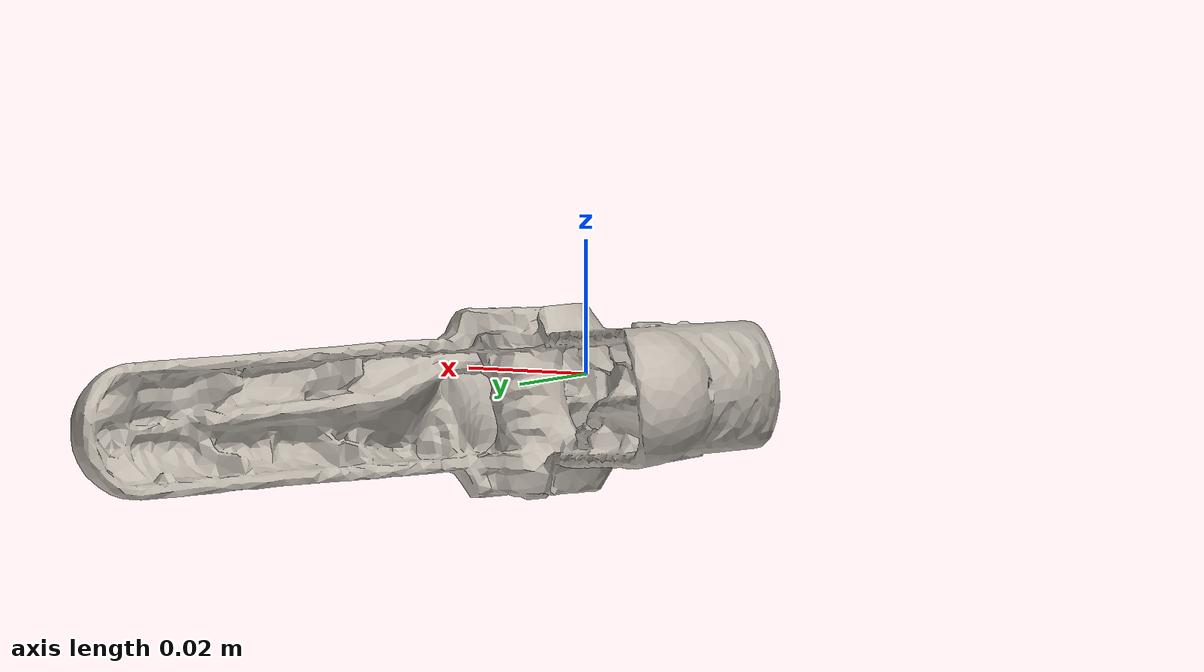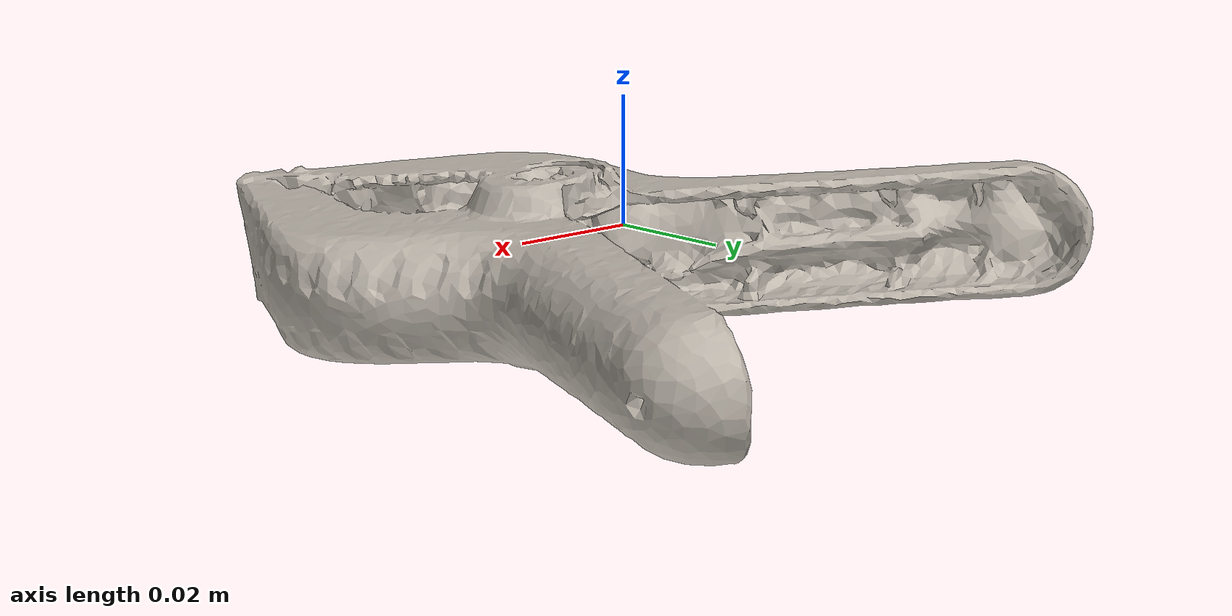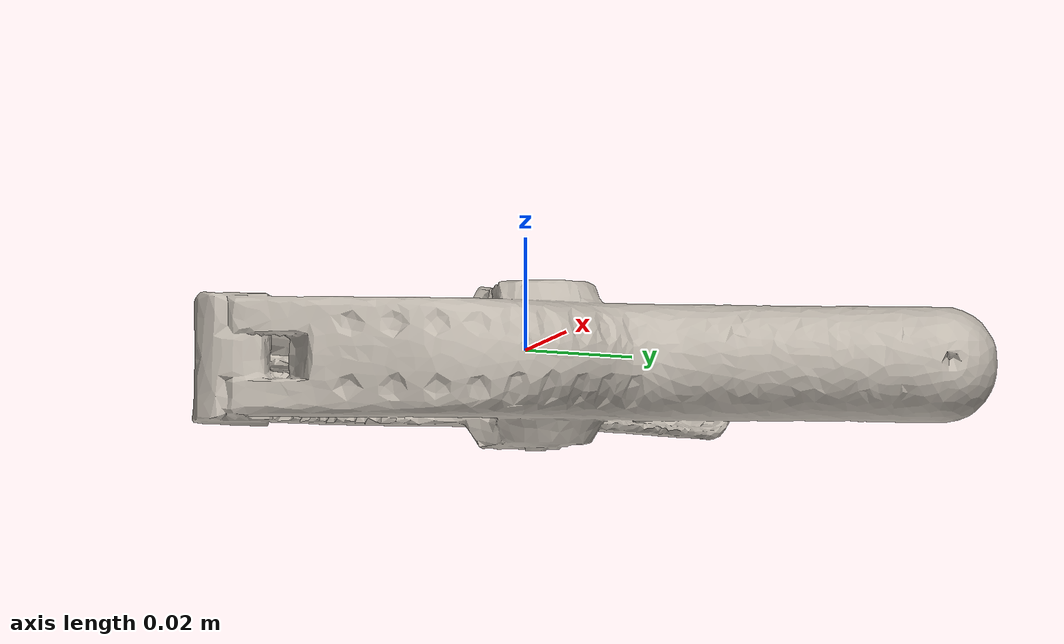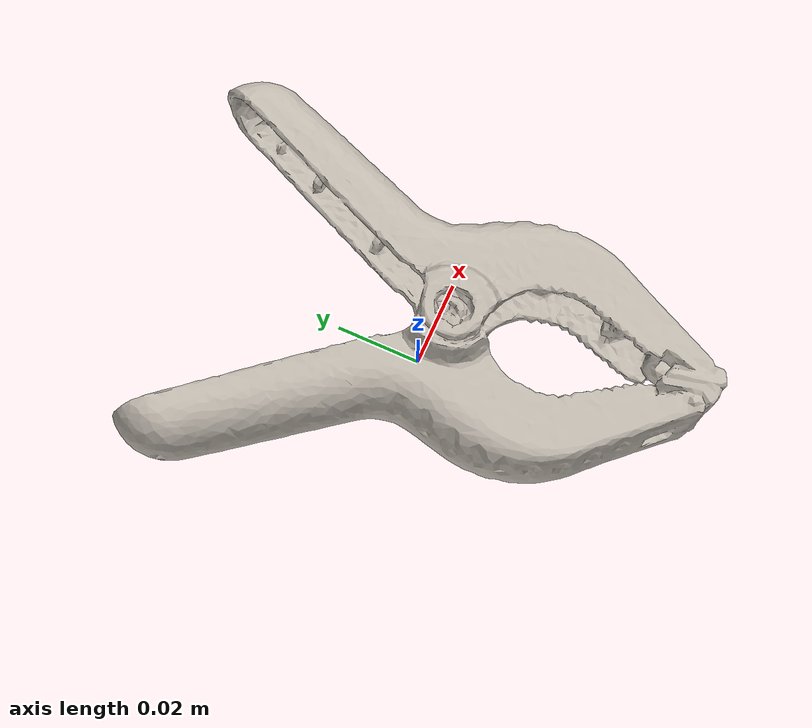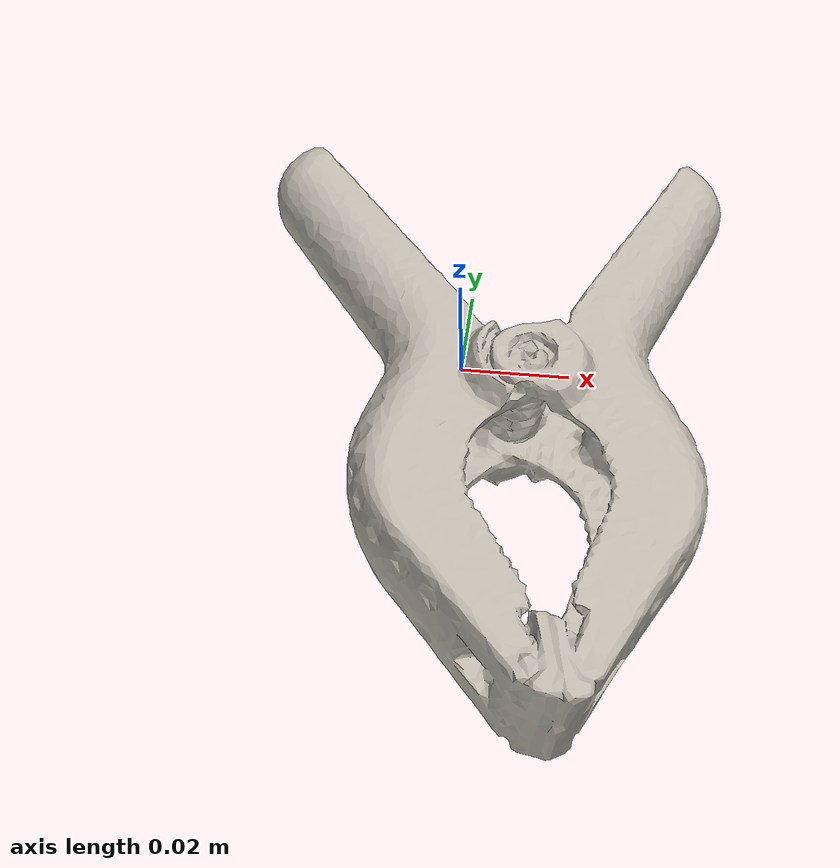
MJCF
<mujoco model="bread">
  <asset>
    <mesh file="nontextured.stl" name="obj_mesh" scale="0.8 0.8 0.8"/>
    <texture file="../../../../../textures/bread.png" type="2d" name="tex-bread" />
    <material name="bread" reflectance="0.7" texrepeat="15 15" texture="tex-bread" texuniform="true"/>
  </asset>
  <worldbody>
    <body>
      <body name="collision">
        <geom pos="0.014593499999999999 0.008210999999999996 -0.019234" mesh="obj_mesh" type="mesh" solimp="0.998 0.998 0.001" solref="0.001 1" density="50" friction="0.95 0.3 0.1"  material="bread" group="1" condim="4"/>
      </body>
      <body name="visual">
        <geom pos="0.014593499999999999 0.008210999999999996 -0.019234" mesh="obj_mesh" type="mesh" material="bread"  conaffinity="0" contype="0"  group="0" mass="0.0001"/>
        <geom pos="0.014593499999999999 0.008210999999999996 -0.019234" mesh="obj_mesh" type="mesh" material="bread"  conaffinity="0" contype="0"  group="1" mass="0.0001"/>
      </body>
      <site rgba="0 0 0 0" size="0.005" pos="0 0 -0.019586" name="bottom_site"/>
      <site rgba="0 0 0 0" size="0.005" pos="0 0 0.019586" name="top_site"/>
      <site rgba="0 0 0 0" size="0.005" pos="0.060020500000000004 0.085537 0.019586" name="horizontal_radius_site"/>
    </body>
  </worldbody>
</mujoco>
